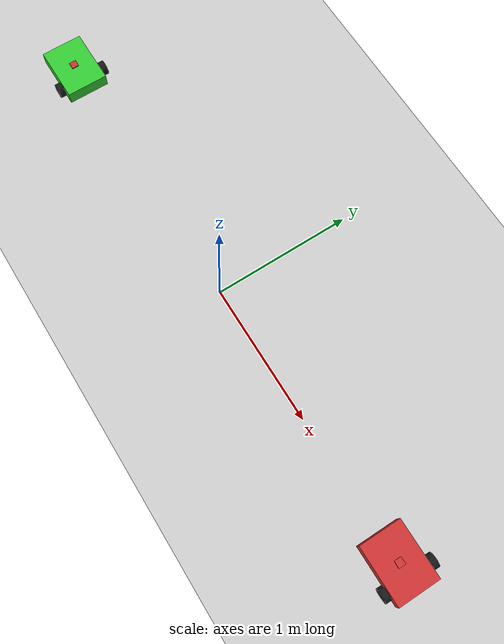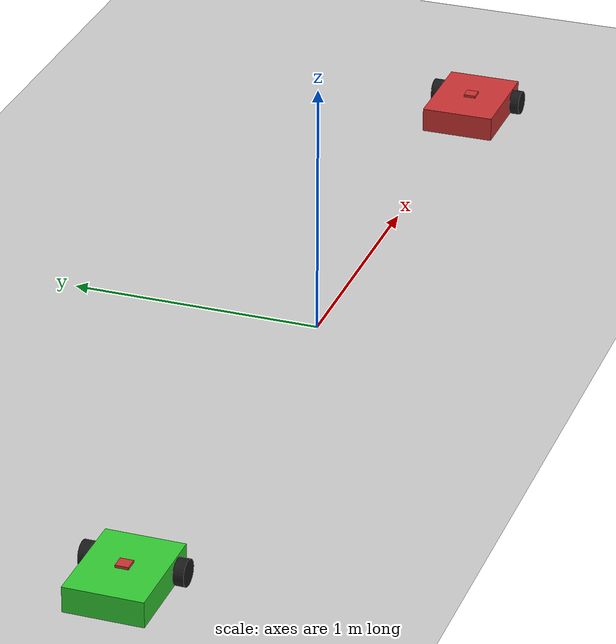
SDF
<?xml version="1.0" ?>
<sdf version="1.8">
  <world name="gear_ratio_test_world">
    <!-- 물리 설정 -->
    <physics name="1ms" type="ode">
      <max_step_size>0.001</max_step_size>
      <real_time_factor>1.0</real_time_factor>
      <real_time_update_rate>1000</real_time_update_rate>
    </physics>

    <!-- 기본 플러그인 -->
    <plugin
      filename="libignition-gazebo-physics-system.so"
      name="ignition::gazebo::systems::Physics">
    </plugin>
    <plugin
      filename="libignition-gazebo-user-commands-system.so"
      name="ignition::gazebo::systems::UserCommands">
    </plugin>
    <plugin
      filename="libignition-gazebo-scene-broadcaster-system.so"
      name="ignition::gazebo::systems::SceneBroadcaster">
    </plugin>

    <!-- IMU 시스템 플러그인 추가 -->
    <plugin
      filename="libignition-gazebo-imu-system.so"
      name="ignition::gazebo::systems::Imu">
    </plugin>

    <!-- 바퀴 속도 제어를 위한 Publisher 플러그인 -->
    <plugin
      filename="libgz-sim-gui-system.so"
      name="ignition::gazebo::systems::Gui">
      <plugin
        filename="libgz-sim-publisher-system.so"
        name="ignition::gazebo::systems::Publisher">
        <topic>/wheel_velocity</topic>
        <type>ignition.msgs.Double</type>
        <value>0.0</value>
        <description>바퀴 속도 제어</description>
        <min>-10</min>
        <max>10</max>
        <step>0.1</step>
      </plugin>
    </plugin>

    <!-- 키보드로 로봇 이동하기 위한 TriggeredPublisher 플러그인 -->
    <!-- 전진 (위 화살표) -->
    <plugin filename="libignition-gazebo-triggered-publisher-system.so"
            name="ignition::gazebo::systems::TriggeredPublisher">
        <input type="ignition.msgs.Int32" topic="/keyboard/keypress">
            <match field="data">16777235</match>
        </input>
        <output type="ignition.msgs.Twist" topic="/cmd_vel">
            linear: {x: 0.5}, angular: {z: 0.0}
        </output>
    </plugin>

    <!-- 후진 (아래 화살표) -->
    <plugin filename="libignition-gazebo-triggered-publisher-system.so"
            name="ignition::gazebo::systems::TriggeredPublisher">
        <input type="ignition.msgs.Int32" topic="/keyboard/keypress">
            <match field="data">16777237</match>
        </input>
        <output type="ignition.msgs.Twist" topic="/cmd_vel">
            linear: {x: -0.5}, angular: {z: 0.0}
        </output>
    </plugin>

    <!-- 좌회전 (왼쪽 화살표) -->
    <plugin filename="libignition-gazebo-triggered-publisher-system.so"
            name="ignition::gazebo::systems::TriggeredPublisher">
        <input type="ignition.msgs.Int32" topic="/keyboard/keypress">
            <match field="data">16777234</match>
        </input>
        <output type="ignition.msgs.Twist" topic="/cmd_vel">
            linear: {x: 0.0}, angular: {z: 0.5}
        </output>
    </plugin>

    <!-- 우회전 (오른쪽 화살표) -->
    <plugin filename="libignition-gazebo-triggered-publisher-system.so"
            name="ignition::gazebo::systems::TriggeredPublisher">
        <input type="ignition.msgs.Int32" topic="/keyboard/keypress">
            <match field="data">16777236</match>
        </input>
        <output type="ignition.msgs.Twist" topic="/cmd_vel">
            linear: {x: 0.0}, angular: {z: -0.5}
        </output>
    </plugin>

    <!-- 정지 (스페이스바) -->
    <plugin filename="libignition-gazebo-triggered-publisher-system.so"
            name="ignition::gazebo::systems::TriggeredPublisher">
        <input type="ignition.msgs.Int32" topic="/keyboard/keypress">
            <match field="data">32</match>
        </input>
        <output type="ignition.msgs.Twist" topic="/cmd_vel">
            linear: {x: 0.0}, angular: {z: 0.0}
        </output>
    </plugin>

    <!-- 조명 -->
    <light type="directional" name="sun">
      <cast_shadows>true</cast_shadows>
      <pose>0 0 10 0 0 0</pose>
      <diffuse>0.8 0.8 0.8 1</diffuse>
      <specular>0.2 0.2 0.2 1</specular>
      <direction>-0.5 0.1 -0.9</direction>
    </light>

    <!-- 지면 모델 포함 -->
    <include>
      <uri>model://chapter8/models/ground_plane</uri>
    </include>

    <!-- 기어비가 낮은(빠른) 로봇 모델 포함 -->
    <include>
      <uri>model://chapter8/models/diff_drive_robot_low_ratio</uri>
      <name>low_ratio_robot</name>
      <pose>-2 0 0 0 0 0</pose>
    </include>

    <!-- 기어비가 높은(느린) 로봇 모델 포함 -->
    <include>
      <uri>model://chapter8/models/diff_drive_robot_high_ratio</uri>
      <name>high_ratio_robot</name>
      <pose>2 0 0 0 0 0</pose>
    </include>

    <!-- GUI 설정 -->
    <gui fullscreen="0">
      <plugin filename="MinimalScene" name="3D View">
        <gz-gui>
          <title>3D View</title>
          <property type="bool" key="showTitleBar">false</property>
          <property type="string" key="state">docked</property>
        </gz-gui>
        <engine>ogre2</engine>
        <scene>scene</scene>
        <ambient_light>0.4 0.4 0.4</ambient_light>
        <background_color>0.8 0.8 0.8</background_color>
        <camera_pose>0 -10 6 0 0.5 1.57</camera_pose>
        <camera_clip>
          <near>0.25</near>
          <far>25000</far>
        </camera_clip>
      </plugin>
      <plugin filename="GzSceneManager" name="Scene Manager">
        <gz-gui>
          <property key="resizable" type="bool">false</property>
          <property key="showTitleBar" type="bool">false</property>
        </gz-gui>
      </plugin>
      <plugin filename="KeyPublisher" name="Key Publisher">
        <gz-gui>
          <anchors target="GzSceneManager">
            <line own="right" target="right"/>
            <line own="top" target="top"/>
          </anchors>
          <property key="showTitleBar" type="bool">false</property>
        </gz-gui>
      </plugin>

      <!-- Teleop GUI 플러그인 -->
      <plugin filename="Teleop" name="Teleop">
        <gz-gui>
          <property key="showTitleBar" type="bool">false</property>
          <property key="resizable" type="bool">true</property>
          <property key="width" type="double">400</property>
          <property key="height" type="double">400</property>
          <property key="state" type="string">docked</property>
        </gz-gui>
        <topic>/cmd_vel</topic>
        <max_linear>1.0</max_linear>
        <max_angular>0.5</max_angular>
      </plugin>
    </gui>
  </world>
</sdf>

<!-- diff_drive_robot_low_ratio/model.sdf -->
<sdf version="1.6">
  <model name="diff_drive_robot_low_ratio">
    <!-- 로봇 본체 -->
    <link name="chassis">
      <pose>0 0 0.05 0 0 0</pose>
      <inertial>
        <mass>5.0</mass>
        <inertia>
          <ixx>0.0417</ixx>
          <iyy>0.0417</iyy>
          <izz>0.0833</izz>
          <ixy>0</ixy>
          <ixz>0</ixz>
          <iyz>0</iyz>
        </inertia>
      </inertial>
      <collision name="collision">
        <geometry>
          <box>
            <size>0.4 0.3 0.1</size>
          </box>
        </geometry>
      </collision>
      <visual name="visual">
        <geometry>
          <box>
            <size>0.4 0.3 0.1</size>
          </box>
        </geometry>
        <material>
          <ambient>0.2 0.8 0.2 1</ambient>
          <diffuse>0.2 0.8 0.2 1</diffuse>
          <specular>0.1 0.1 0.1 1</specular>
        </material>
      </visual>
    </link>

    <!-- 좌측 바퀴 모델 포함 -->
    <include>
      <uri>model://chapter8/models/diff_drive_robot_low_ratio/actuators/left_wheel</uri>
      <name>left_wheel</name>
      <pose>0.1 0.175 0.05 -1.5707 0 0</pose>
    </include>

    <!-- 우측 바퀴 모델 포함 -->
    <include>
      <uri>model://chapter8/models/diff_drive_robot_low_ratio/actuators/right_wheel</uri>
      <name>right_wheel</name>
      <pose>0.1 -0.175 0.05 -1.5707 0 0</pose>
    </include>

    <!-- 캐스터 휠 -->
    <link name="caster">
      <pose>-0.15 0 0.025 0 0 0</pose>
      <inertial>
        <mass>0.5</mass>
        <inertia>
          <ixx>0.0001</ixx>
          <iyy>0.0001</iyy>
          <izz>0.0001</izz>
          <ixy>0</ixy>
          <ixz>0</ixz>
          <iyz>0</iyz>
        </inertia>
      </inertial>
      <collision name="collision">
        <geometry>
          <sphere>
            <radius>0.025</radius>
          </sphere>
        </geometry>
        <surface>
          <friction>
            <ode>
              <mu>0.1</mu>
              <mu2>0.1</mu2>
            </ode>
          </friction>
        </surface>
      </collision>
      <visual name="visual">
        <geometry>
          <sphere>
            <radius>0.025</radius>
          </sphere>
        </geometry>
        <material>
          <ambient>0.3 0.3 0.3 1</ambient>
          <diffuse>0.3 0.3 0.3 1</diffuse>
          <specular>0.1 0.1 0.1 1</specular>
        </material>
      </visual>
    </link>

    <!-- 좌측 바퀴 조인트 - 기어비 1:1 (낮은 기어비) -->
    <joint name="left_wheel_joint" type="revolute">
      <parent>chassis</parent>
      <child>left_wheel::left_wheel_link</child>
      <axis>
        <xyz>0 0 1</xyz>
        <limit>
          <lower>-1e+16</lower>
          <upper>1e+16</upper>
        </limit>
        <dynamics>
          <spring_reference>0</spring_reference>
          <spring_stiffness>0</spring_stiffness>
          <damping>0</damping>
          <friction>0</friction>
        </dynamics>
      </axis>
      <physics>
        <ode>
          <gear_ratio>1</gear_ratio>
        </ode>
      </physics>
    </joint>

    <!-- 우측 바퀴 조인트 - 기어비 1:1 (낮은 기어비) -->
    <joint name="right_wheel_joint" type="revolute">
      <parent>chassis</parent>
      <child>right_wheel::right_wheel_link</child>
      <axis>
        <xyz>0 0 1</xyz>
        <limit>
          <lower>-1e+16</lower>
          <upper>1e+16</upper>
        </limit>
        <dynamics>
          <spring_reference>0</spring_reference>
          <spring_stiffness>0</spring_stiffness>
          <damping>0</damping>
          <friction>0</friction>
        </dynamics>
      </axis>
      <physics>
        <ode>
          <gear_ratio>1</gear_ratio>
        </ode>
      </physics>
    </joint>

    <!-- 캐스터 볼 조인트 -->
    <joint name="caster_joint" type="ball">
      <parent>chassis</parent>
      <child>caster</child>
    </joint>

    <!-- IMU 센서 모델 포함 -->
    <include>
      <uri>model://chapter8/models/diff_drive_robot_low_ratio/sensors/imu</uri>
      <name>imu</name>
      <pose>0 0 0.1 0 0 0</pose>
    </include>

    <!-- IMU 센서 고정 조인트 -->
    <joint name="imu_joint" type="fixed">
      <parent>chassis</parent>
      <child>imu::imu_link</child>
    </joint>

    <!-- 좌측 바퀴 제어를 위한 JointController 플러그인 -->
    <plugin
      filename="libgz-sim-joint-controller-system.so"
      name="ignition::gazebo::systems::JointController">
      <joint_name>left_wheel_joint</joint_name>
      <topic>/wheel_velocity</topic>
      <joint_type>velocity</joint_type>
      <p_gain>1</p_gain>
      <i_gain>0.1</i_gain>
      <d_gain>0.01</d_gain>
    </plugin>

    <!-- 우측 바퀴 제어를 위한 JointController 플러그인 -->
    <plugin
      filename="libgz-sim-joint-controller-system.so"
      name="ignition::gazebo::systems::JointController">
      <joint_name>right_wheel_joint</joint_name>
      <topic>/wheel_velocity</topic>
      <joint_type>velocity</joint_type>
      <p_gain>1</p_gain>
      <i_gain>0.1</i_gain>
      <d_gain>0.01</d_gain>
    </plugin>
  </model>
</sdf>

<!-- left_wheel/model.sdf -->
<sdf version="1.6">
  <model name="left_wheel">
    <link name="left_wheel_link">
      <pose>0 0 0 0 0 0</pose>
      <inertial>
        <mass>1.0</mass>
        <inertia>
          <ixx>0.0029</ixx>
          <iyy>0.0029</iyy>
          <izz>0.0052</izz>
          <ixy>0</ixy>
          <ixz>0</ixz>
          <iyz>0</iyz>
        </inertia>
      </inertial>
      <collision name="collision">
        <geometry>
          <cylinder>
            <radius>0.05</radius>
            <length>0.04</length>
          </cylinder>
        </geometry>
      </collision>
      <visual name="visual">
        <geometry>
          <cylinder>
            <radius>0.05</radius>
            <length>0.04</length>
          </cylinder>
        </geometry>
        <material>
          <ambient>0.1 0.1 0.1 1</ambient>
          <diffuse>0.1 0.1 0.1 1</diffuse>
          <specular>0.1 0.1 0.1 1</specular>
        </material>
      </visual>
    </link>
  </model>
</sdf>

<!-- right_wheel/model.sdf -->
<sdf version="1.6">
  <model name="right_wheel">
    <link name="right_wheel_link">
      <pose>0 0 0 0 0 0</pose>
      <inertial>
        <mass>1.0</mass>
        <inertia>
          <ixx>0.0029</ixx>
          <iyy>0.0029</iyy>
          <izz>0.0052</izz>
          <ixy>0</ixy>
          <ixz>0</ixz>
          <iyz>0</iyz>
        </inertia>
      </inertial>
      <collision name="collision">
        <geometry>
          <cylinder>
            <radius>0.05</radius>
            <length>0.04</length>
          </cylinder>
        </geometry>
      </collision>
      <visual name="visual">
        <geometry>
          <cylinder>
            <radius>0.05</radius>
            <length>0.04</length>
          </cylinder>
        </geometry>
        <material>
          <ambient>0.1 0.1 0.1 1</ambient>
          <diffuse>0.1 0.1 0.1 1</diffuse>
          <specular>0.1 0.1 0.1 1</specular>
        </material>
      </visual>
    </link>
  </model>
</sdf>

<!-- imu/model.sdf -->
<sdf version="1.6">
  <model name="imu_sensor">
    <link name="imu_link">
      <pose>0 0 0 0 0 0</pose>
      <inertial>
        <mass>0.1</mass>
        <inertia>
          <ixx>0.000001</ixx>
          <iyy>0.000001</iyy>
          <izz>0.000001</izz>
          <ixy>0</ixy>
          <ixz>0</ixz>
          <iyz>0</iyz>
        </inertia>
      </inertial>
      <collision name="collision">
        <geometry>
          <box>
            <size>0.05 0.05 0.02</size>
          </box>
        </geometry>
      </collision>
      <visual name="visual">
        <geometry>
          <box>
            <size>0.05 0.05 0.02</size>
          </box>
        </geometry>
        <material>
          <ambient>0.8 0.2 0.2 1</ambient>
          <diffuse>0.8 0.2 0.2 1</diffuse>
          <specular>0.1 0.1 0.1 1</specular>
        </material>
      </visual>
      <sensor name="imu_sensor" type="imu">
        <always_on>1</always_on>
        <update_rate>100</update_rate>
        <visualize>true</visualize>
        <topic>/imu</topic>
        <plugin filename="libignition-gazebo-imu-system.so"
                name="ignition::gazebo::systems::Imu">
        </plugin>
      </sensor>
    </link>
  </model>
</sdf>

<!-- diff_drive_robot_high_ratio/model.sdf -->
<sdf version="1.6">
  <model name="diff_drive_robot_high_ratio">
    <!-- 로봇 본체 -->
    <link name="chassis">
      <pose>0 0 0.05 0 0 0</pose>
      <inertial>
        <mass>5.0</mass>
        <inertia>
          <ixx>0.0417</ixx>
          <iyy>0.0417</iyy>
          <izz>0.0833</izz>
          <ixy>0</ixy>
          <ixz>0</ixz>
          <iyz>0</iyz>
        </inertia>
      </inertial>
      <collision name="collision">
        <geometry>
          <box>
            <size>0.4 0.3 0.1</size>
          </box>
        </geometry>
      </collision>
      <visual name="visual">
        <geometry>
          <box>
            <size>0.4 0.3 0.1</size>
          </box>
        </geometry>
        <material>
          <ambient>0.8 0.2 0.2 1</ambient>
          <diffuse>0.8 0.2 0.2 1</diffuse>
          <specular>0.1 0.1 0.1 1</specular>
        </material>
      </visual>
    </link>

    <!-- 좌측 바퀴 모델 포함 -->
    <include>
      <uri>model://chapter8/models/diff_drive_robot_high_ratio/actuators/left_wheel</uri>
      <name>left_wheel</name>
      <pose>0.1 0.175 0.05 -1.5707 0 0</pose>
    </include>

    <!-- 우측 바퀴 모델 포함 -->
    <include>
      <uri>model://chapter8/models/diff_drive_robot_high_ratio/actuators/right_wheel</uri>
      <name>right_wheel</name>
      <pose>0.1 -0.175 0.05 -1.5707 0 0</pose>
    </include>

    <!-- 캐스터 휠 -->
    <link name="caster">
      <pose>-0.15 0 0.025 0 0 0</pose>
      <inertial>
        <mass>0.5</mass>
        <inertia>
          <ixx>0.0001</ixx>
          <iyy>0.0001</iyy>
          <izz>0.0001</izz>
          <ixy>0</ixy>
          <ixz>0</ixz>
          <iyz>0</iyz>
        </inertia>
      </inertial>
      <collision name="collision">
        <geometry>
          <sphere>
            <radius>0.025</radius>
          </sphere>
        </geometry>
        <surface>
          <friction>
            <ode>
              <mu>0.1</mu>
              <mu2>0.1</mu2>
            </ode>
          </friction>
        </surface>
      </collision>
      <visual name="visual">
        <geometry>
          <sphere>
            <radius>0.025</radius>
          </sphere>
        </geometry>
        <material>
          <ambient>0.3 0.3 0.3 1</ambient>
          <diffuse>0.3 0.3 0.3 1</diffuse>
          <specular>0.1 0.1 0.1 1</specular>
        </material>
      </visual>
    </link>

    <!-- 좌측 바퀴 조인트 - 기어비 3:1 (높은 기어비) -->
    <joint name="left_wheel_joint" type="revolute">
      <parent>chassis</parent>
      <child>left_wheel::left_wheel_link</child>
      <axis>
        <xyz>0 0 1</xyz>
        <limit>
          <lower>-1e+16</lower>
          <upper>1e+16</upper>
        </limit>
        <dynamics>
          <spring_reference>0</spring_reference>
          <spring_stiffness>0</spring_stiffness>
          <damping>0</damping>
          <friction>0</friction>
        </dynamics>
      </axis>
      <physics>
        <ode>
          <gear_ratio>3</gear_ratio>
        </ode>
      </physics>
    </joint>

    <!-- 우측 바퀴 조인트 - 기어비 3:1 (높은 기어비) -->
    <joint name="right_wheel_joint" type="revolute">
      <parent>chassis</parent>
      <child>right_wheel::right_wheel_link</child>
      <axis>
        <xyz>0 0 1</xyz>
        <limit>
          <lower>-1e+16</lower>
          <upper>1e+16</upper>
        </limit>
        <dynamics>
          <spring_reference>0</spring_reference>
          <spring_stiffness>0</spring_stiffness>
          <damping>0</damping>
          <friction>0</friction>
        </dynamics>
      </axis>
      <physics>
        <ode>
          <gear_ratio>3</gear_ratio>
        </ode>
      </physics>
    </joint>

    <!-- 캐스터 볼 조인트 -->
    <joint name="caster_joint" type="ball">
      <parent>chassis</parent>
      <child>caster</child>
    </joint>

    <!-- IMU 센서 모델 포함 -->
    <include>
      <uri>model://chapter8/models/diff_drive_robot_high_ratio/sensors/imu</uri>
      <name>imu</name>
      <pose>0 0 0.1 0 0 0</pose>
    </include>

    <!-- IMU 센서 고정 조인트 -->
    <joint name="imu_joint" type="fixed">
      <parent>chassis</parent>
      <child>imu::imu_link</child>
    </joint>

    <!-- 좌측 바퀴 제어를 위한 JointController 플러그인 -->
    <plugin
      filename="libgz-sim-joint-controller-system.so"
      name="ignition::gazebo::systems::JointController">
      <joint_name>left_wheel_joint</joint_name>
      <topic>/wheel_velocity</topic>
      <joint_type>velocity</joint_type>
      <p_gain>1</p_gain>
      <i_gain>0.1</i_gain>
      <d_gain>0.01</d_gain>
    </plugin>

    <!-- 우측 바퀴 제어를 위한 JointController 플러그인 -->
    <plugin
      filename="libgz-sim-joint-controller-system.so"
      name="ignition::gazebo::systems::JointController">
      <joint_name>right_wheel_joint</joint_name>
      <topic>/wheel_velocity</topic>
      <joint_type>velocity</joint_type>
      <p_gain>1</p_gain>
      <i_gain>0.1</i_gain>
      <d_gain>0.01</d_gain>
    </plugin>
  </model>
</sdf>
